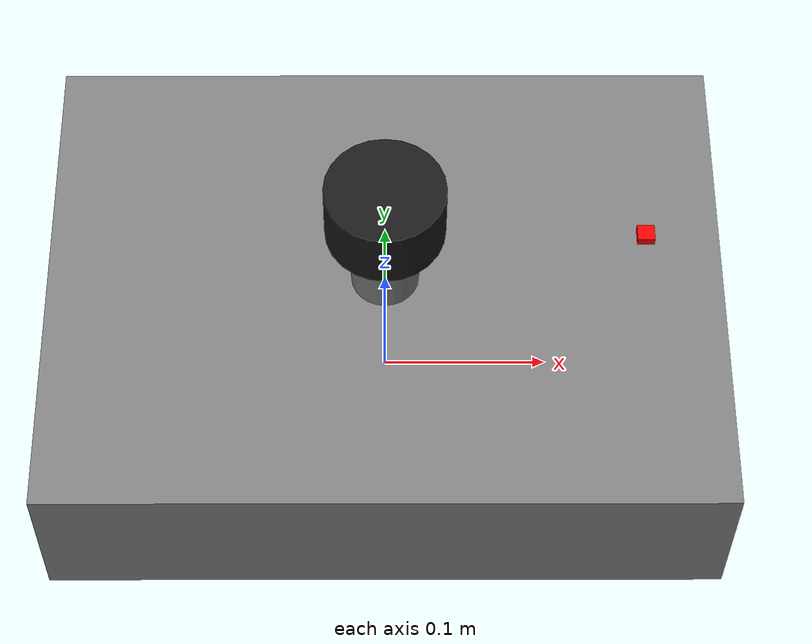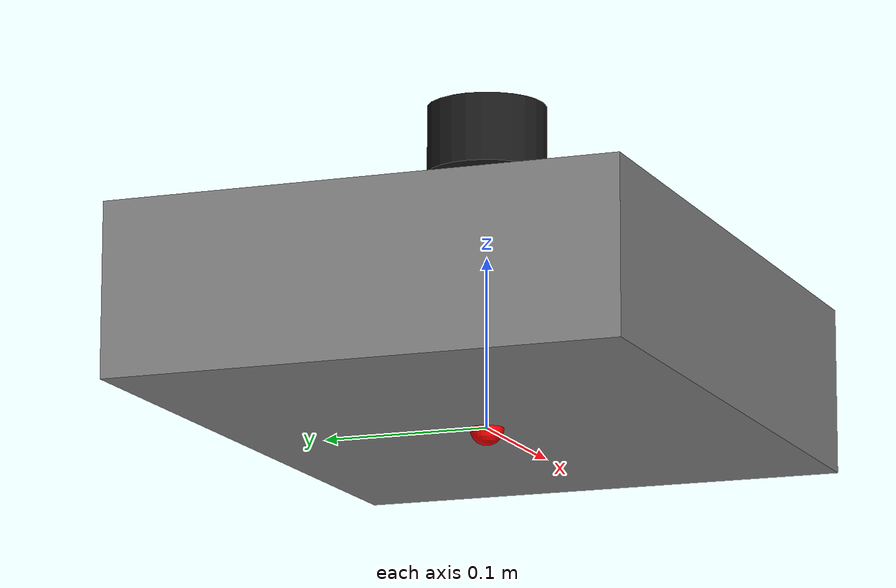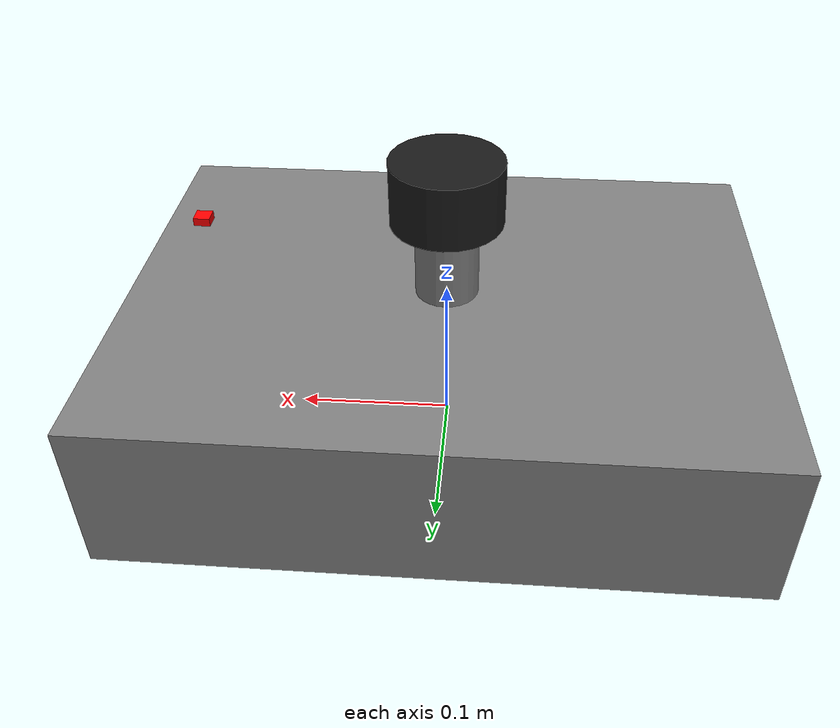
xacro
<?xml version="1.0"?>
<robot xmlns:xacro="http://www.ros.org/wiki/xacro" name="robot_with_sensors">

  <!-- ───── 색상 팔레트 ───── -->
  <material name="blue"><color  rgba="0.0 0.0 1.0 1.0"/></material>
  <material name="red"><color   rgba="1.0 0.0 0.0 1.0"/></material>
  <material name="green"><color rgba="0.0 1.0 0.0 1.0"/></material>
  <material name="gray"><color  rgba="0.5 0.5 0.5 1.0"/></material>
  <material name="black"><color rgba="0.1 0.1 0.1 1.0"/></material>

  <!-- ───── 기본 링크 ───── -->
  <link name="base_footprint">
    <visual><geometry><sphere radius="0.01"/></geometry><material name="red"/></visual>
  </link>

  <link name="base_link">
    <visual><geometry><box size="0.4 0.3 0.1"/></geometry><material name="gray"/></visual>
    <collision><geometry><box size="0.4 0.3 0.1"/></geometry></collision>
    <inertial>
      <mass value="2.0"/>
      <inertia ixx="0.02" ixy="0" ixz="0" iyy="0.03" iyz="0" izz="0.04"/>
    </inertial>
  </link>

  <joint name="base_footprint_to_base_link" type="fixed">
    <parent link="base_footprint"/>
    <child  link="base_link"/>
    <origin xyz="0 0 0.05" rpy="0 0 0"/>
  </joint>

  <!-- ───── 카메라 하우징 프레임(빈 링크) ───── -->
  <link name="camera_link"/>
  <joint name="camera_joint" type="fixed">
    <parent link="base_link"/>
    <child  link="camera_link"/>
    <origin xyz="0.15 0 0.08" rpy="0 0 0"/>
  </joint>

  <!-- ───── RealSense IMU (optical frame) ───── -->
  <link name="d435i_imu_optical_frame">
    <visual><geometry><box size="0.01 0.01 0.005"/></geometry><material name="red"/></visual>
    <collision><geometry><box size="0.01 0.01 0.005"/></geometry></collision>
    <inertial>
      <mass value="0.001"/>
      <inertia ixx="1e-6" ixy="0" ixz="0" iyy="1e-6" iyz="0" izz="1e-6"/>
    </inertial>
  </link>

  <joint name="d435i_imu_joint" type="fixed">
    <parent link="camera_link"/>
    <child  link="d435i_imu_optical_frame"/>
    <origin xyz="0 0 0.015" rpy="0 0 0"/>
  </joint>

  <!-- ───── 라이다 ───── -->
  <link name="laser">
    <visual><geometry><cylinder radius="0.035" length="0.04"/></geometry><material name="black"/></visual>
    <collision><geometry><cylinder radius="0.035" length="0.04"/></geometry></collision>
    <inertial>
      <mass value="0.2"/>
      <inertia ixx="1e-4" ixy="0" ixz="0" iyy="1e-4" iyz="0" izz="1e-4"/>
    </inertial>
  </link>

  <joint name="laser_joint" type="fixed">
    <parent link="base_link"/>
    <child  link="laser"/>
    <origin xyz="0 0 0.12" rpy="0 0 0"/>
  </joint>

  <!-- ───── 센서 마운트 ───── -->
  <link name="sensor_mount">
    <visual><geometry><cylinder radius="0.02" length="0.05"/></geometry><material name="gray"/></visual>
    <collision><geometry><cylinder radius="0.02" length="0.05"/></geometry></collision>
    <inertial>
      <mass value="0.1"/>
      <inertia ixx="1e-4" ixy="0" ixz="0" iyy="1e-4" iyz="0" izz="1e-4"/>
    </inertial>
  </link>

  <joint name="sensor_mount_joint" type="fixed">
    <parent link="base_link"/>
    <child  link="sensor_mount"/>
    <origin xyz="0 0 0.075" rpy="0 0 0"/>
  </joint>

</robot>
